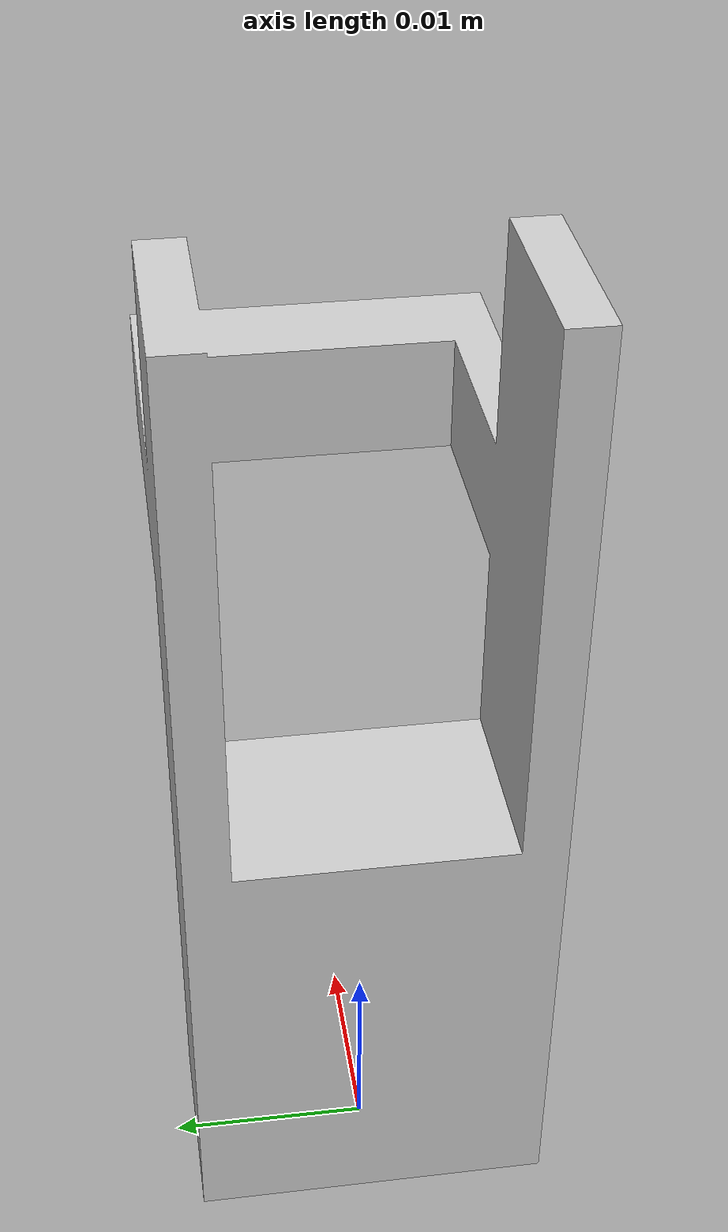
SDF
<?xml version="1.0" ?>
<sdf version="1.6">
  <model name="middle_leg">
    <static>false</static>
    <link name="middle_leg_link">
      <inertial auto="true" />
      <visual name="middle_leg_visual">
        <geometry>
          <mesh>
            <uri>model://meshes/middle_leg.dae</uri>
          </mesh>
        </geometry>
      </visual>
      <collision name="middle_leg_collision">
        <density>1240.0</density>
        <geometry>
          <mesh>
            <uri>model://meshes/middle_leg.dae</uri>
          </mesh>
        </geometry>
      </collision>
    </link>
  </model>
</sdf>
